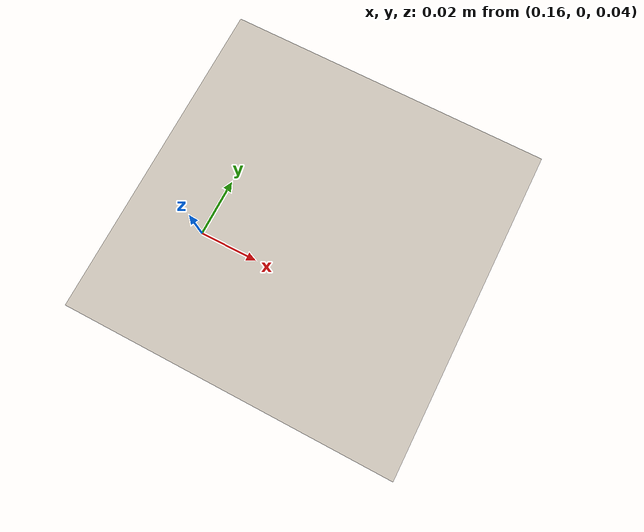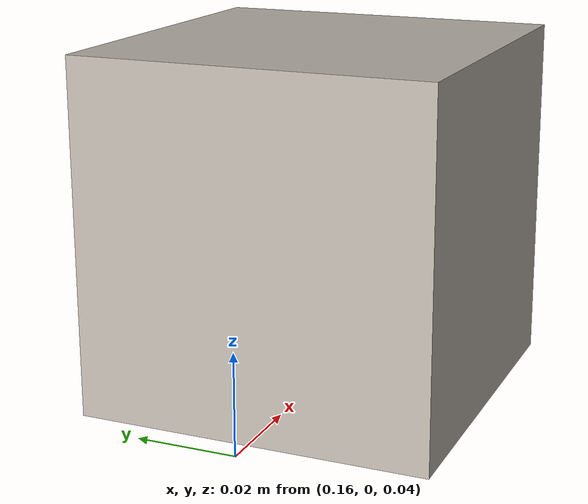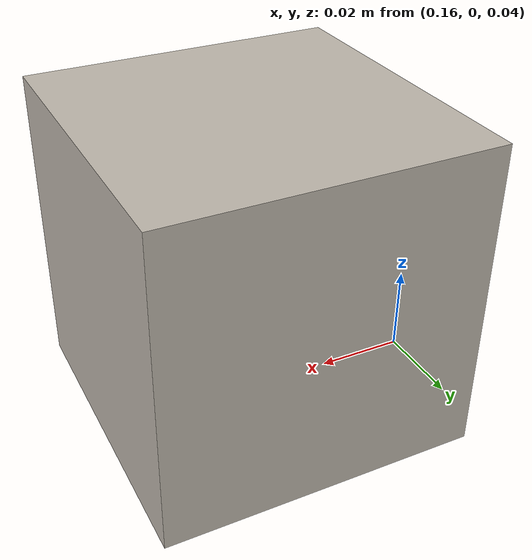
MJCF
<mujoco>
  <asset>
    <texture name="cube" type="cube"
             fileup="reorientation_cube_textures/fileup.png"
             fileback="reorientation_cube_textures/fileback.png"
             filedown="reorientation_cube_textures/filedown.png"
             filefront="reorientation_cube_textures/filefront.png"
             fileleft="reorientation_cube_textures/fileleft.png"
             fileright="reorientation_cube_textures/fileright.png"/>
    <material name="cube" texture="cube"/>
    <texture name="graycube" type="cube"
            fileup="reorientation_cube_textures/grayup.png"
             fileback="reorientation_cube_textures/grayback.png"
             filedown="reorientation_cube_textures/graydown.png"
             filefront="reorientation_cube_textures/grayfront.png"
             fileleft="reorientation_cube_textures/grayleft.png"
             fileright="reorientation_cube_textures/grayright.png"/>
    <material name="graycube" texture="graycube"/>
  </asset>
  <worldbody>
    <light pos="0 0 1"/>
    <body name="cube" pos="0.2 0.0 0.075" quat="1 0 0 0">
      <freejoint/>
      <geom name="cube" type="box" size=".035 .035 .035" mass=".108" material="cube"/>
    </body>
  </worldbody>

   <sensor>
        <framepos name="cube_position" objtype="body" objname="cube"/>
        <framequat name="cube_orientation" objtype="body" objname="cube"/>
        <framelinvel name="cube_linear_velocity" objtype="body" objname="cube"/>
        <frameangvel name="cube_angular_velocity" objtype="body" objname="cube"/>
    </sensor>
</mujoco>
